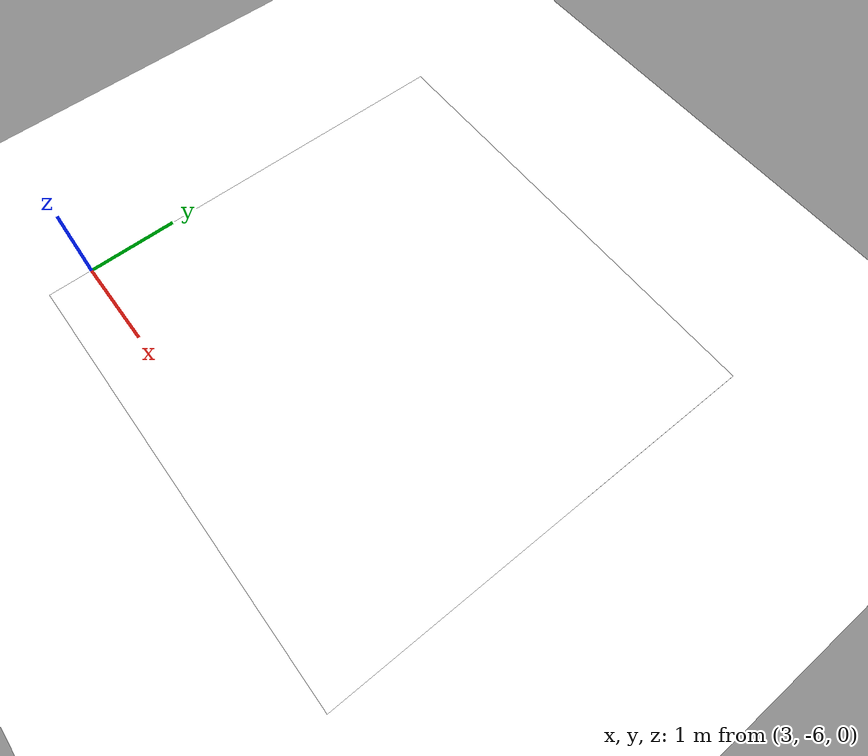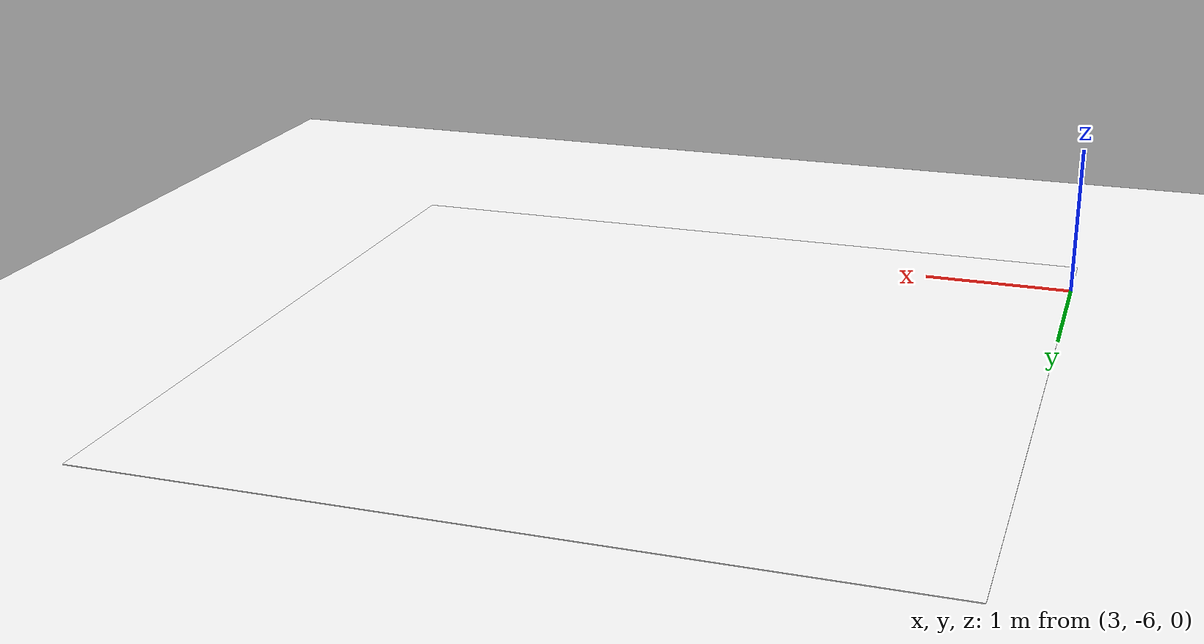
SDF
<sdf version="1.6">
 <world name="uav_world">
  <physics name="1ms" type="ignored">
   <max_step_size>0.001</max_step_size>
   <real_time_factor>1.0</real_time_factor>
  </physics>
  <plugin filename="gz-sim-physics-system" name="gz::sim::systems::Physics"/>
  <plugin filename="gz-sim-scene-broadcaster-system" name="gz::sim::systems::SceneBroadcaster"/>
  <plugin filename="gz-sim-user-commands-system" name="gz::sim::systems::UserCommands"/>
  <plugin filename="gz-sim-sensors-system" name="gz::sim::systems::Sensors">
   <render_engine>ogre2</render_engine>
  </plugin>
  <light type="directional" name="sun">
   <pose>0 0 10 0 0 0</pose>
   <diffuse>0.8 0.8 0.8 1</diffuse>
   <specular>0.2 0.2 0.2 1</specular>
   <attenuation>
    <range>1000</range>
    <constant>0.9</constant>
    <linear>0.01</linear>
    <quadratic>0.001</quadratic>
   </attenuation>
   <direction>-0.5 0.1 -0.9</direction>
  </light>
  <include>
   <name>marker_pad_stag</name>
   <uri>file:///home/viktor/BMSTU/nir_ws/gazebo_world/models/marker_pad_stag</uri>
   <pose>5.5 -4 0.003 0 0 0</pose>
  </include>
  <model name="ground_plane">
   <static>true</static>
   <link name="link">
    <collision name="collision">
     <geometry><plane><normal>0 0 1</normal><size>100 100</size></plane></geometry>
    </collision>
    <visual name="visual">
     <geometry><plane><normal>0 0 1</normal><size>100 100</size></plane></geometry>
     <material>
      <diffuse>1 1 1 1</diffuse>
      <specular>1 1 1 1</specular>
      <pbr>
       <metal>
        <albedo_map>models/textures/grass_dry.png</albedo_map>
        <normal_map>models/textures/grass_dry.png</normal_map>
       </metal>
      </pbr>
     </material>
    </visual>
   </link>
  </model>
 </world>
</sdf>

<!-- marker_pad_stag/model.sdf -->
<sdf version='1.6'>
  <model name='marker_pad_stag'>
    <pose>0 0 0.0001 0 0 0</pose>
    <static>true</static>

    <!-- Asphalt patch -->
    <link name='marker_pad_stag/base_link'>
      <pose>0 0 -0.0001 0 0 0</pose>
      <collision name="collision">
        <geometry>
          <plane>
            <normal>0 0 1</normal>
            <size>5 5</size>
          </plane>
        </geometry>
      </collision>
      <visual name="visual">
        <geometry>
          <plane>
            <normal>0 0 1</normal>
            <size>5 5</size>
          </plane>
        </geometry>
        <material>
          <diffuse>1 1 1 1</diffuse>
          <specular>1 1 1 1</specular>
          <pbr>
            <metal>
              <albedo_map>materials/textures/tarmac.png</albedo_map>
              <normal_map>materials/textures/tarmac.png</normal_map>
            </metal>
          </pbr>
        </material>
      </visual>
    </link>

    <!-- MARKERS -->

    <link name="marker_pad_stag/marker_0">
    <pose>-0.6 -0.6 0 0 0 0</pose>
      <collision name="marker_pad_stag/marker_0_collision">
        <geometry>
          <plane>
            <normal>0 0 1</normal>
            <size>0.5 0.5</size>
          </plane>
        </geometry>
      </collision>
      <visual name="marker_pad_stag/marker_0_visual">
        <geometry>
          <plane>
            <normal>0 0 1</normal>
            <size>0.5 0.5</size>
          </plane>
        </geometry>
        <material>
          <diffuse>1 1 1 1</diffuse>
          <specular>1 1 1 1</specular>
          <pbr>
            <metal>
              <albedo_map>materials/textures/markers/00000.png</albedo_map>
              <normal_map>materials/textures/markers/00000.png</normal_map>
            </metal>
          </pbr>
        </material>
      </visual>
    </link>
    <joint name="marker_pad_stag/marker_0_joint" type="fixed">
      <parent>marker_pad_stag/base_link</parent>
      <child>marker_pad_stag/marker_0</child>
    </joint>

    <link name="marker_pad_stag/marker_1">
    <pose>0 -0.6 0 0 0 0</pose>
      <collision name="marker_pad_stag/marker_1_collision">
        <geometry>
          <plane>
            <normal>0 0 1</normal>
            <size>0.5 0.5</size>
          </plane>
        </geometry>
      </collision>
      <visual name="marker_pad_stag/marker_1_visual">
        <geometry>
          <plane>
            <normal>0 0 1</normal>
            <size>0.5 0.5</size>
          </plane>
        </geometry>
        <material>
          <diffuse>1 1 1 1</diffuse>
          <specular>1 1 1 1</specular>
          <pbr>
            <metal>
              <albedo_map>materials/textures/markers/00001.png</albedo_map>
              <normal_map>materials/textures/markers/00001.png</normal_map>
            </metal>
          </pbr>
        </material>
      </visual>
    </link>
    <joint name="marker_pad_stag/marker_1_joint" type="fixed">
      <parent>marker_pad_stag/base_link</parent>
      <child>marker_pad_stag/marker_1</child>
    </joint>

    <link name="marker_pad_stag/marker_2">
    <pose>0.6 -0.6 0 0 0 0</pose>
      <collision name="marker_pad_stag/marker_2_collision">
        <geometry>
          <plane>
            <normal>0 0 1</normal>
            <size>0.5 0.5</size>
          </plane>
        </geometry>
      </collision>
      <visual name="marker_pad_stag/marker_2_visual">
        <geometry>
          <plane>
            <normal>0 0 1</normal>
            <size>0.5 0.5</size>
          </plane>
        </geometry>
        <material>
          <diffuse>1 1 1 1</diffuse>
          <specular>1 1 1 1</specular>
          <pbr>
            <metal>
              <albedo_map>materials/textures/markers/00002.png</albedo_map>
              <normal_map>materials/textures/markers/00002.png</normal_map>
            </metal>
          </pbr>
        </material>
      </visual>
    </link>
    <joint name="marker_pad_stag/marker_2_joint" type="fixed">
      <parent>marker_pad_stag/base_link</parent>
      <child>marker_pad_stag/marker_2</child>
    </joint>

    <link name="marker_pad_stag/marker_3">
    <pose>-0.6 0 0 0 0 0</pose>
      <collision name="marker_pad_stag/marker_3_collision">
        <geometry>
          <plane>
            <normal>0 0 1</normal>
            <size>0.5 0.5</size>
          </plane>
        </geometry>
      </collision>
      <visual name="marker_pad_stag/marker_3_visual">
        <geometry>
          <plane>
            <normal>0 0 1</normal>
            <size>0.5 0.5</size>
          </plane>
        </geometry>
        <material>
          <diffuse>1 1 1 1</diffuse>
          <specular>1 1 1 1</specular>
          <pbr>
            <metal>
              <albedo_map>materials/textures/markers/00003.png</albedo_map>
              <normal_map>materials/textures/markers/00003.png</normal_map>
            </metal>
          </pbr>
        </material>
      </visual>
    </link>
    <joint name="marker_pad_stag/marker_3_joint" type="fixed">
      <parent>marker_pad_stag/base_link</parent>
      <child>marker_pad_stag/marker_3</child>
    </joint>

    <link name="marker_pad_stag/marker_4">
    <pose>0 0 0 0 0 0</pose>
      <collision name="marker_pad_stag/marker_4_collision">
        <geometry>
          <plane>
            <normal>0 0 1</normal>
            <size>0.5 0.5</size>
          </plane>
        </geometry>
      </collision>
      <visual name="marker_pad_stag/marker_4_visual">
        <geometry>
          <plane>
            <normal>0 0 1</normal>
            <size>0.5 0.5</size>
          </plane>
        </geometry>
        <material>
          <diffuse>1 1 1 1</diffuse>
          <specular>1 1 1 1</specular>
          <pbr>
            <metal>
              <albedo_map>materials/textures/markers/00004.png</albedo_map>
              <normal_map>materials/textures/markers/00004.png</normal_map>
            </metal>
          </pbr>
        </material>
      </visual>
    </link>
    <joint name="marker_pad_stag/marker_4_joint" type="fixed">
      <parent>marker_pad_stag/base_link</parent>
      <child>marker_pad_stag/marker_4</child>
    </joint>

    <link name="marker_pad_stag/marker_5">
    <pose>0.6 0 0 0 0 0</pose>
      <collision name="marker_pad_stag/marker_5_collision">
        <geometry>
          <plane>
            <normal>0 0 1</normal>
            <size>0.5 0.5</size>
          </plane>
        </geometry>
      </collision>
      <visual name="marker_pad_stag/marker_5_visual">
        <geometry>
          <plane>
            <normal>0 0 1</normal>
            <size>0.5 0.5</size>
          </plane>
        </geometry>
        <material>
          <diffuse>1 1 1 1</diffuse>
          <specular>1 1 1 1</specular>
          <pbr>
            <metal>
              <albedo_map>materials/textures/markers/00005.png</albedo_map>
              <normal_map>materials/textures/markers/00005.png</normal_map>
            </metal>
          </pbr>
        </material>
      </visual>
    </link>
    <joint name="marker_pad_stag/marker_5_joint" type="fixed">
      <parent>marker_pad_stag/base_link</parent>
      <child>marker_pad_stag/marker_5</child>
    </joint>

    <link name="marker_pad_stag/marker_6">
    <pose>-0.6 0.6 0 0 0 0</pose>
      <collision name="marker_pad_stag/marker_6_collision">
        <geometry>
          <plane>
            <normal>0 0 1</normal>
            <size>0.5 0.5</size>
          </plane>
        </geometry>
      </collision>
      <visual name="marker_pad_stag/marker_6_visual">
        <geometry>
          <plane>
            <normal>0 0 1</normal>
            <size>0.5 0.5</size>
          </plane>
        </geometry>
        <material>
          <diffuse>1 1 1 1</diffuse>
          <specular>1 1 1 1</specular>
          <pbr>
            <metal>
              <albedo_map>materials/textures/markers/00006.png</albedo_map>
              <normal_map>materials/textures/markers/00006.png</normal_map>
            </metal>
          </pbr>
        </material>
      </visual>
    </link>
    <joint name="marker_pad_stag/marker_6_joint" type="fixed">
      <parent>marker_pad_stag/base_link</parent>
      <child>marker_pad_stag/marker_6</child>
    </joint>

    <link name="marker_pad_stag/marker_7">
    <pose>0 0.6 0 0 0 0</pose>
      <collision name="marker_pad_stag/marker_7_collision">
        <geometry>
          <plane>
            <normal>0 0 1</normal>
            <size>0.5 0.5</size>
          </plane>
        </geometry>
      </collision>
      <visual name="marker_pad_stag/marker_7_visual">
        <geometry>
          <plane>
            <normal>0 0 1</normal>
            <size>0.5 0.5</size>
          </plane>
        </geometry>
        <material>
          <diffuse>1 1 1 1</diffuse>
          <specular>1 1 1 1</specular>
          <pbr>
            <metal>
              <albedo_map>materials/textures/markers/00007.png</albedo_map>
              <normal_map>materials/textures/markers/00007.png</normal_map>
            </metal>
          </pbr>
        </material>
      </visual>
    </link>
    <joint name="marker_pad_stag/marker_7_joint" type="fixed">
      <parent>marker_pad_stag/base_link</parent>
      <child>marker_pad_stag/marker_7</child>
    </joint>

    <link name="marker_pad_stag/marker_8">
    <pose>0.6 0.6 0 0 0 0</pose>
      <collision name="marker_pad_stag/marker_8_collision">
        <geometry>
          <plane>
            <normal>0 0 1</normal>
            <size>0.5 0.5</size>
          </plane>
        </geometry>
      </collision>
      <visual name="marker_pad_stag/marker_8_visual">
        <geometry>
          <plane>
            <normal>0 0 1</normal>
            <size>0.5 0.5</size>
          </plane>
        </geometry>
        <material>
          <diffuse>1 1 1 1</diffuse>
          <specular>1 1 1 1</specular>
          <pbr>
            <metal>
              <albedo_map>materials/textures/markers/00008.png</albedo_map>
              <normal_map>materials/textures/markers/00008.png</normal_map>
            </metal>
          </pbr>
        </material>
      </visual>
    </link>
    <joint name="marker_pad_stag/marker_8_joint" type="fixed">
      <parent>marker_pad_stag/base_link</parent>
      <child>marker_pad_stag/marker_8</child>
    </joint>

  </model>
</sdf>
